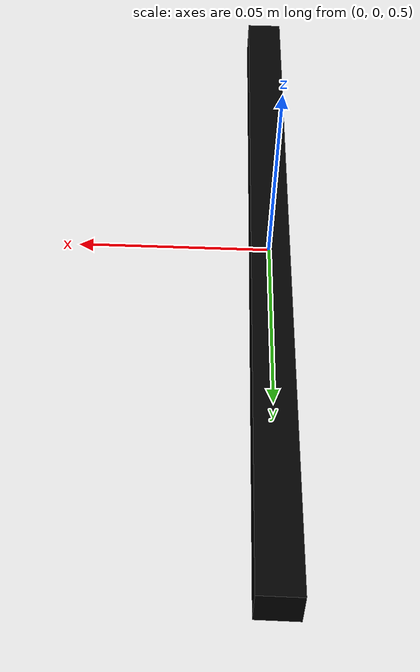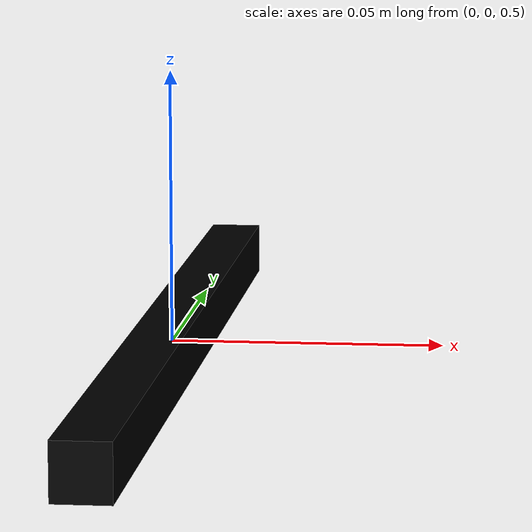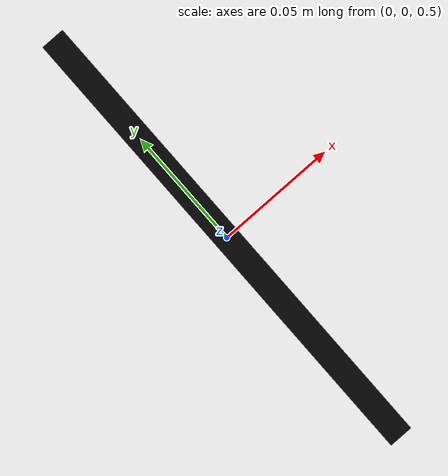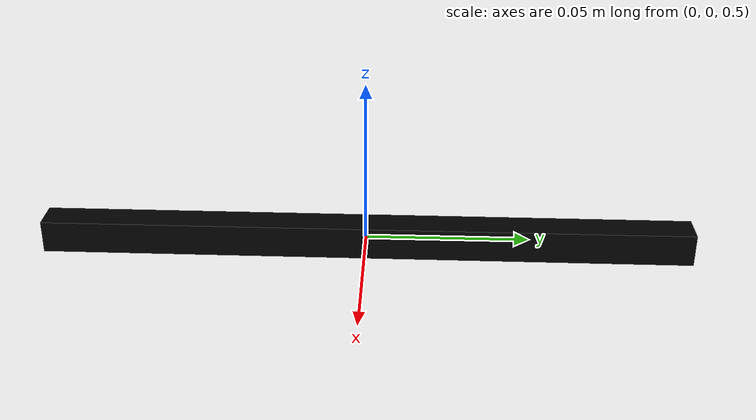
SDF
<?xml version='1.0'?>
<sdf version="1.5">
<model name="baton">
  <pose>0 0 0.5 0 0 0</pose>
    <link name="link">
      <collision name="collision">
        <geometry>
          <box>
            <size>0.01 0.2 0.01</size>
          </box>
        </geometry>
      </collision>
      <visual name="visual">
        <geometry>
          <box>
            <size>0.01 0.2 0.01</size>
          </box>
        </geometry>
        <!-- http://gazebosim.org/tutorials?tut=color_model -->
        <material> <!-- LED material -->
          <ambient>0 0 0 1</ambient>
          <diffuse>0 0 0 1</diffuse>
          <specular>0 0 0 0</specular>
          <emissive>0 1 0 1</emissive>
        </material> <!-- End LED material -->
      </visual>
    </link>
  </model>
</sdf>
